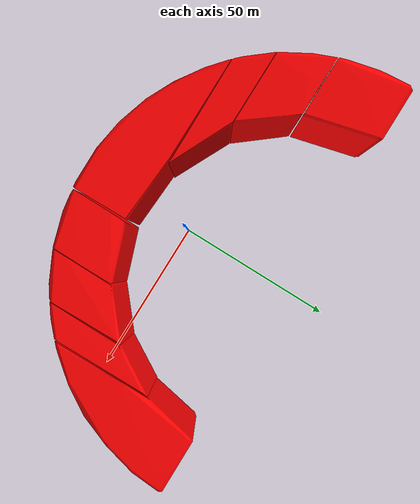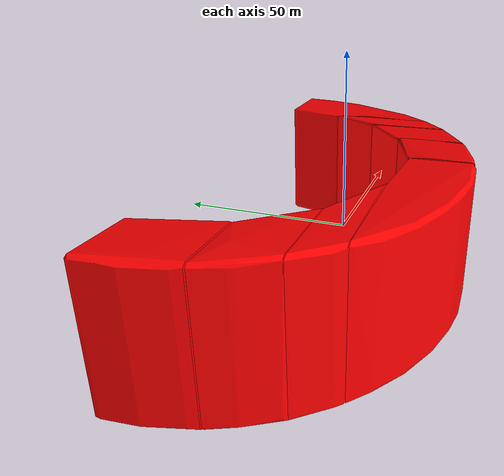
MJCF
<mujoco>
    <asset>
        <mesh file="rainbow_stacker/part2/0_rainbow_part2_20200427_20200428.stl" name="rainbow0"></mesh>
        <mesh file="rainbow_stacker/part2/1_rainbow_part2_20200427_20200428.stl" name="rainbow1"></mesh>
        <mesh file="rainbow_stacker/part2/2_rainbow_part2_20200427_20200428.stl" name="rainbow2"></mesh>
        <mesh file="rainbow_stacker/part2/3_rainbow_part2_20200427_20200428.stl" name="rainbow3"></mesh>
        <mesh file="rainbow_stacker/part2/4_rainbow_part2_20200427_20200428.stl" name="rainbow4"></mesh>
        <mesh file="rainbow_stacker/part2/5_rainbow_part2_20200427_20200428.stl" name="rainbow5"></mesh>
        <mesh file="rainbow_stacker/part2/6_rainbow_part2_20200427_20200428.stl" name="rainbow6"></mesh>
        <mesh file="rainbow_stacker/part2/7_rainbow_part2_20200427_20200428.stl" name="rainbow7"></mesh>
        <material name="block_mat" specular="0" shininess="0.5" reflectance="0" rgba="1 0 0 1"/>
    </asset>
    <worldbody>
        <body quat="0.7071 0 -0.7071 0">
            <geom type="mesh" mesh="rainbow0" material="block_mat"/>
            <geom type="mesh" mesh="rainbow1" material="block_mat"/>
            <geom type="mesh" mesh="rainbow2" material="block_mat"/>
            <geom type="mesh" mesh="rainbow3" material="block_mat"/>
            <geom type="mesh" mesh="rainbow4" material="block_mat"/>
            <geom type="mesh" mesh="rainbow5" material="block_mat"/>
            <geom type="mesh" mesh="rainbow6" material="block_mat"/>
            <geom type="mesh" mesh="rainbow7" material="block_mat"/>
            <joint type="free"/>
        </body>
    </worldbody>
</mujoco>
